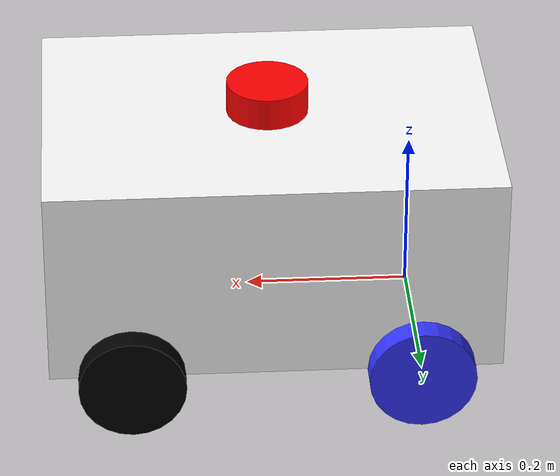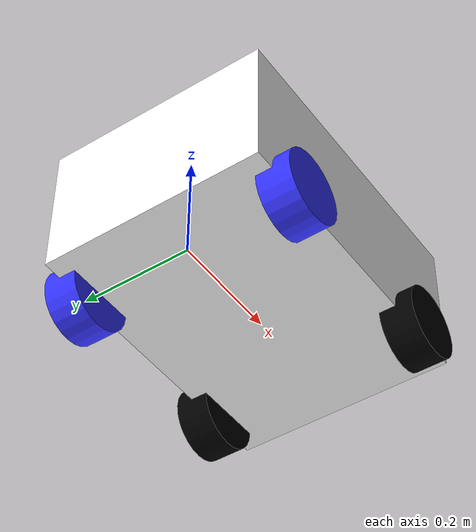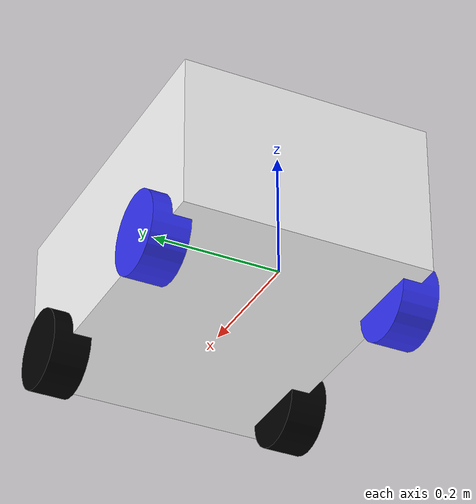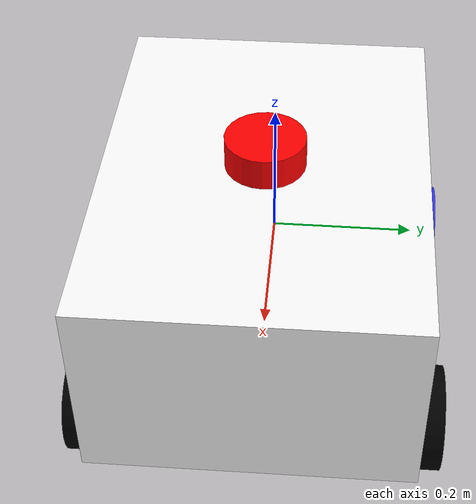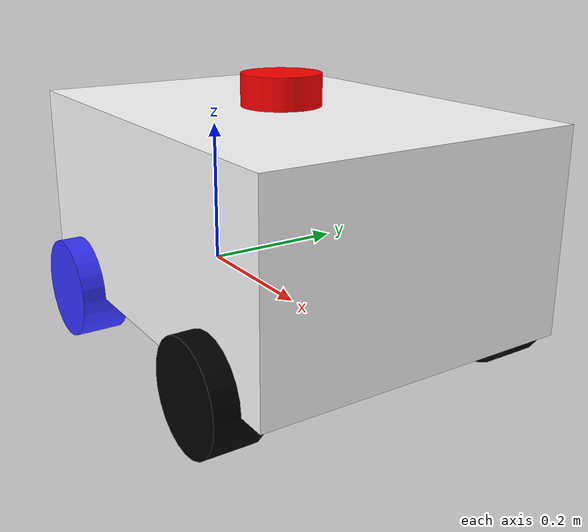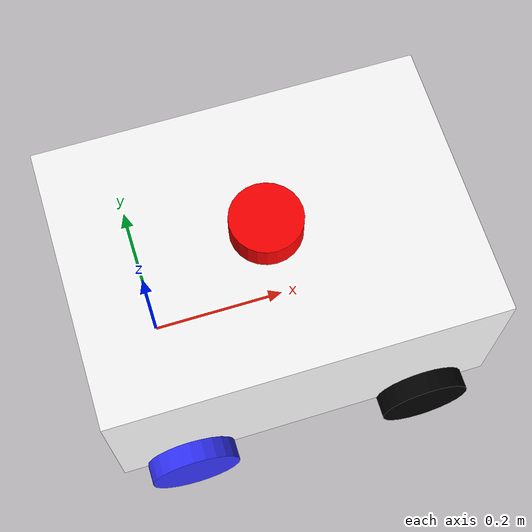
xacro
<?xml version="1.0"?>
<robot xmlns:xacro="http://www.ros.org/wiki/xacro"  name="robot">

    <xacro:include filename="robot_core.xacro" />

    <!--xacro:include filename="gazebo_control.xacro" / -->
    <xacro:include filename="ros2_control.xacro" />
    <xacro:include filename="lidar.xacro" />

</robot>

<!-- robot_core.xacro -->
<robot xmlns:xacro="http://www.ros.org/wiki/xacro" >
 <xacro:include filename="inertial_macros.xacro" />

  <material name="white">
    <color rgba="1 1 1 1"/>
</material>

<material name="orange">
    <color rgba="1 0.3 0.1 1"/>
</material>

<material name="blue">
    <color rgba="0.2 0.2 1 1"/>
</material>

<material name="black">
    <color rgba="0 0 0 1"/>
</material>

<material name="red">
    <color rgba="1 0 0 1"/>
</material>

<!-- BASE LINK -->
<link name="base_link">

</link>

<!-- CHASSIS LINK -->
<joint name="chasis_joint" type="fixed">
  <parent link="base_link"/>
  <child link="chassis"/>
  <origin xyz="-0.1 0 0"/>
</joint>

<link name="chassis">
    <visual>
        <origin xyz="0.275 0 0.125" rpy="0 0 0"/>
        <geometry>
            <box size="0.55 0.4 0.25"/>
        </geometry>
        <material name="white"/>
    </visual>

    <collision>
        <origin xyz="0.275 0 0.125" rpy="0 0 0"/>
        <geometry>
            <box size="0.55 0.4 0.25"/>
        </geometry>
    </collision>
    <xacro:inertial_box mass="0.5" x="0.55" y="0.4" z="0.25">
     <origin xyz="0.275 0 0.125" rpy="0 0 0"/>
    </xacro:inertial_box>
</link>

<gazebo reference="chassis">
    <material>Gazebo/White</material>
</gazebo>

<!-- Back LEFT WHEEL -->
<joint name="back_left_wheel_joint" type="continuous">
    <parent link="base_link"/>
    <child link="back_left_wheel"/>
    <origin xyz="0 0.2 0" rpy="-${pi/2} 0 0"/>
    <axis xyz="0 0 1"/>
</joint>

<link name="back_left_wheel">
    <visual>
        <geometry>
            <cylinder length="0.06" radius="0.065" />
        </geometry>
        <material name="blue"/>
    </visual>
    <collision>
        <geometry>
            <cylinder length="0.06" radius="0.065" />
        </geometry>
    </collision>
    <xacro:inertial_cylinder mass="0.3" length="0.06" radius="0.065">
      <origin xyz="0 0 0" rpy="0 0 0"/>
    </xacro:inertial_cylinder>
</link>

<gazebo reference="back_left_wheel">
    <material>Gazebo/Blue</material>
</gazebo>

<!-- BACK RIGHT WHEEL -->

<joint name="back_right_wheel_joint" type="continuous">
    <parent link="base_link"/>
    <child link="back_right_wheel"/>
    <origin xyz="0 -0.2 0" rpy="${pi/2} 0 0"/>
    <axis xyz="0 0 -1"/>
</joint>

<link name="back_right_wheel">
    <visual>
        <geometry>
            <cylinder length="0.06" radius="0.065" />
        </geometry>
        <material name="blue"/>
    </visual>
    <collision>
        <geometry>
            <cylinder length="0.06" radius="0.065" />
        </geometry>
    </collision>
    <xacro:inertial_cylinder mass="0.3" length="0.06" radius="0.065">
      <origin xyz="0 0 0" rpy="0 0 0"/>
    </xacro:inertial_cylinder>
</link>
<gazebo reference="back_right_wheel">
    <material>Gazebo/Blue</material>
</gazebo>

<!-- FRONT LEFT WHEEL -->
<joint name="front_left_wheel_joint" type="fixed">
    <parent link="chassis"/>
    <child link="front_left_wheel"/>
    <origin xyz="0.45 0.2 0" rpy="-${pi/2} 0 0"/>
    <axis xyz="0 0 1"/>
</joint>

<link name="front_left_wheel">
    <visual>
        <geometry>
            <cylinder length="0.06" radius="0.065" />
        </geometry>
        <material name="black"/>
    </visual>
    <collision>
        <geometry>
            <cylinder length="0.06" radius="0.065" />
        </geometry>
        <material name="black"/>
    </collision>
    <xacro:inertial_cylinder mass="0.3" length="0.06" radius="0.065">
      <origin xyz="0 0 0" rpy="0 0 0"/>
    </xacro:inertial_cylinder>

</link>
<gazebo reference="front_left_wheel">
    <material>Gazebo/Black</material>
    <mu1 value="0.0001" />
    <mu2 value="0.0001" />
</gazebo>

<!-- FRONT RIGHT WHEEL -->

<joint name="front_right_wheel_joint" type="fixed">
    <parent link="chassis"/>
    <child link="front_right_wheel"/>
    <origin xyz="0.45 -0.2 0" rpy="${pi/2} 0 0"/>
    <axis xyz="0 0 -1"/>
</joint>

<link name="front_right_wheel">
    <visual>
        <geometry>
            <cylinder length="0.06" radius="0.065" />
        </geometry>
        <material name="black"/>
    </visual>
    <collision>
        <geometry>
            <cylinder length="0.06" radius="0.065" />
        </geometry>
        <material name="black"/>
    </collision>
    <xacro:inertial_cylinder mass="0.3" length="0.06" radius="0.065">
      <origin xyz="0 0 0" rpy="0 0 0"/>
    </xacro:inertial_cylinder>
</link>
<gazebo reference="front_right_wheel">
    <material>Gazebo/Black</material>
    <mu1 value="0.0001" />
    <mu2 value="0.0001" />
</gazebo>

</robot>

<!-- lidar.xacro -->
<robot xmlns:xacro="http://www.ros.org/wiki/xacro" >

    <joint name="laser_joint" type="fixed">
        <parent link="chassis"/>
        <child link="laser_frame"/>
        <origin xyz="0.275 0 0.27" rpy="0 0 0"/>
    </joint>
    <link name="laser_frame">
    <visual>
        <geometry>
            <cylinder radius="0.05" length="0.04"/>
        </geometry>
        <material name="red"/>
    </visual>
    <collision>
        <geometry>
            <cylinder radius="0.05" length="0.04"/>
        </geometry>
    </collision>
    <xacro:inertial_cylinder mass="0.1" length="0.04" radius="0.05">
        <origin xyz="0 0 0" rpy="0 0 0"/>
    </xacro:inertial_cylinder>
    </link>

    <gazebo reference="laser_frame">
     <material>Gazebo/Red</material>
      <sensor name="laser" type="ray">
         <pose> 0 0 0 0 0 0 </pose>
         <visualize>true</visualize>
         <update_rate>10</update_rate>
         <ray>
           <scan>
              <horizontal>
                <samples>360</samples>
                <min_angle>-3.14</min_angle>
                <max_angle>3.14</max_angle>
              </horizontal>
           </scan>
           <range>
             <min>0.3</min>
             <max>12</max>
           </range>
         </ray>
         <plugin name="laser_controller" filename="libgazebo_ros_ray_sensor.so">
           <ros>
              <argument>~/out:=scan</argument>
           </ros>
           <output_type>sensor_msgs/LaserScan</output_type>
           <frame_name>laser_frame</frame_name>
         </plugin>
      </sensor>
    </gazebo>

</robot>
